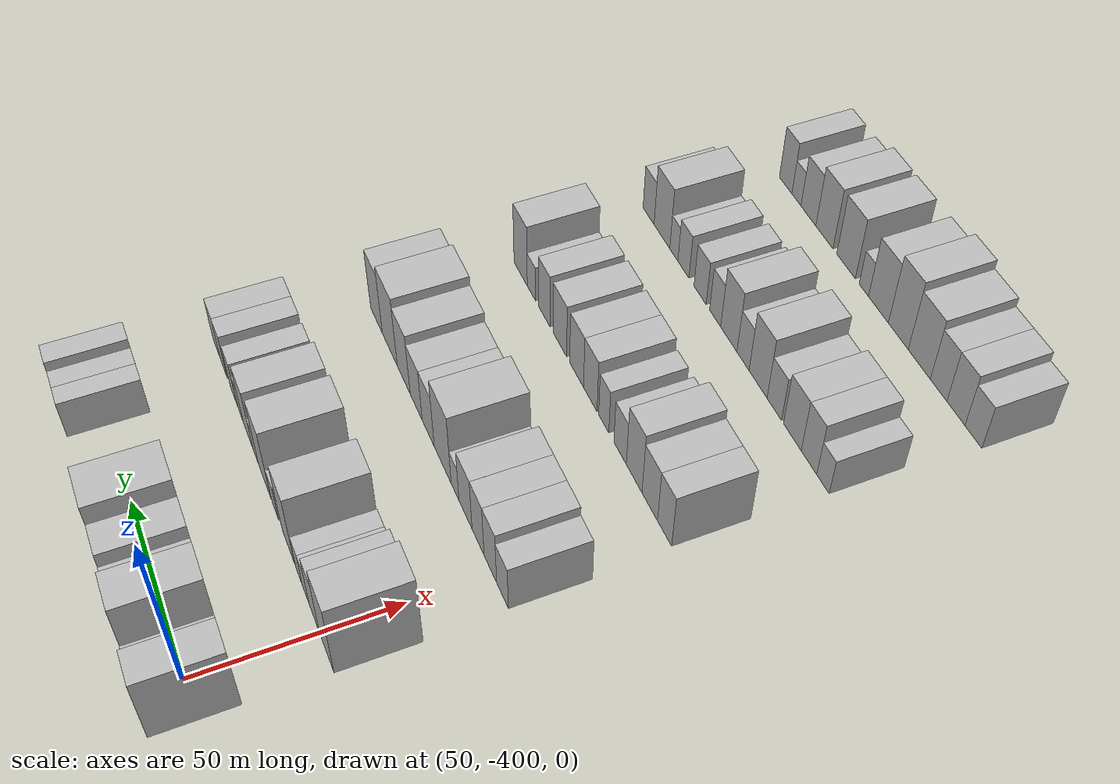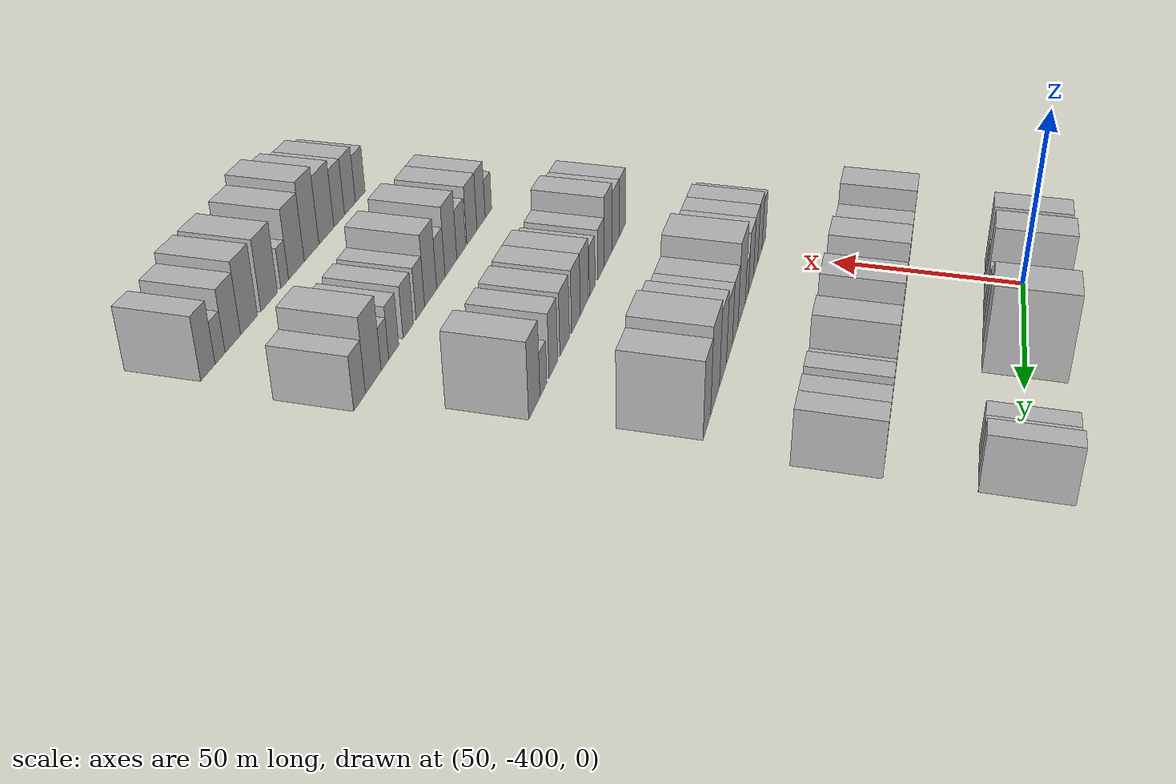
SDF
<sdf version="1.6">
 <world name="default">
  <model name="building_24">
   <static>1</static>
   <pose>50.0000 -406.0609 0 0.000000 0.000000 0.000000</pose>
   <link name="link">
    <pose>0 0 10.50 0 0 0</pose>
    <collision name="collision"><geometry><box><size>20.0000 8.8327 21.0000</size></box></geometry></collision>
    <visual name="visual">
     <cast_shadows>0</cast_shadows>
     <geometry><box><size>20.0000 8.8327 21.0000</size></box></geometry>
     <material>
      <script>
       <uri>model://HANNAS_wall/materials/scripts</uri>
       <uri>model://HANNAS_wall/materials/textures</uri>
       <name>vrc/HANNAS_wall</name>
      </script>
     </material>
    </visual>
   </link>
  </model>
  <model name="building_25">
   <static>1</static>
   <pose>50.0000 -397.7985 0 0.000000 0.000000 0.000000</pose>
   <link name="link">
    <pose>0 0 6.00 0 0 0</pose>
    <collision name="collision"><geometry><box><size>20.0000 5.6922 12.0000</size></box></geometry></collision>
    <visual name="visual">
     <cast_shadows>0</cast_shadows>
     <geometry><box><size>20.0000 5.6922 12.0000</size></box></geometry>
     <material>
      <script>
       <uri>model://HANNAS_wall/materials/scripts</uri>
       <uri>model://HANNAS_wall/materials/textures</uri>
       <name>vrc/HANNAS_wall</name>
      </script>
     </material>
    </visual>
   </link>
  </model>
  <model name="building_26">
   <static>1</static>
   <pose>50.0000 -388.9494 0 0.000000 0.000000 0.000000</pose>
   <link name="link">
    <pose>0 0 12.00 0 0 0</pose>
    <collision name="collision"><geometry><box><size>20.0000 10.0061 24.0000</size></box></geometry></collision>
    <visual name="visual">
     <cast_shadows>0</cast_shadows>
     <geometry><box><size>20.0000 10.0061 24.0000</size></box></geometry>
     <material>
      <script>
       <uri>model://HANNAS_wall/materials/scripts</uri>
       <uri>model://HANNAS_wall/materials/textures</uri>
       <name>vrc/HANNAS_wall</name>
      </script>
     </material>
    </visual>
   </link>
  </model>
  <model name="building_27">
   <static>1</static>
   <pose>50.0000 -379.5831 0 0.000000 0.000000 0.000000</pose>
   <link name="link">
    <pose>0 0 7.50 0 0 0</pose>
    <collision name="collision"><geometry><box><size>20.0000 6.7265 15.0000</size></box></geometry></collision>
    <visual name="visual">
     <cast_shadows>0</cast_shadows>
     <geometry><box><size>20.0000 6.7265 15.0000</size></box></geometry>
     <material>
      <script>
       <uri>model://HANNAS_wall/materials/scripts</uri>
       <uri>model://HANNAS_wall/materials/textures</uri>
       <name>vrc/HANNAS_wall</name>
      </script>
     </material>
    </visual>
   </link>
  </model>
  <model name="building_28">
   <static>1</static>
   <pose>50.0000 -370.9501 0 0.000000 0.000000 0.000000</pose>
   <link name="link">
    <pose>0 0 9.00 0 0 0</pose>
    <collision name="collision"><geometry><box><size>20.0000 8.5394 18.0000</size></box></geometry></collision>
    <visual name="visual">
     <cast_shadows>0</cast_shadows>
     <geometry><box><size>20.0000 8.5394 18.0000</size></box></geometry>
     <material>
      <script>
       <uri>model://HANNAS_wall/materials/scripts</uri>
       <uri>model://HANNAS_wall/materials/textures</uri>
       <name>vrc/HANNAS_wall</name>
      </script>
     </material>
    </visual>
   </link>
  </model>
  <model name="building_29">
   <static>1</static>
   <pose>50.0000 -360.7772 0 0.000000 0.000000 0.000000</pose>
   <link name="link">
    <pose>0 0 12.00 0 0 0</pose>
    <collision name="collision"><geometry><box><size>20.0000 11.8064 24.0000</size></box></geometry></collision>
    <visual name="visual">
     <cast_shadows>0</cast_shadows>
     <geometry><box><size>20.0000 11.8064 24.0000</size></box></geometry>
     <material>
      <script>
       <uri>model://HANNAS_wall/materials/scripts</uri>
       <uri>model://HANNAS_wall/materials/textures</uri>
       <name>vrc/HANNAS_wall</name>
      </script>
     </material>
    </visual>
   </link>
  </model>
  <model name="building_30">
   <static>1</static>
   <pose>50.0000 -322.5711 0 0.000000 0.000000 0.000000</pose>
   <link name="link">
    <pose>0 0 6.00 0 0 0</pose>
    <collision name="collision"><geometry><box><size>20.0000 5.5353 12.0000</size></box></geometry></collision>
    <visual name="visual">
     <cast_shadows>0</cast_shadows>
     <geometry><box><size>20.0000 5.5353 12.0000</size></box></geometry>
     <material>
      <script>
       <uri>model://HANNAS_wall/materials/scripts</uri>
       <uri>model://HANNAS_wall/materials/textures</uri>
       <name>vrc/HANNAS_wall</name>
      </script>
     </material>
    </visual>
   </link>
  </model>
  <model name="building_31">
   <static>1</static>
   <pose>50.0000 -317.0941 0 0.000000 0.000000 0.000000</pose>
   <link name="link">
    <pose>0 0 6.00 0 0 0</pose>
    <collision name="collision"><geometry><box><size>20.0000 5.4187 12.0000</size></box></geometry></collision>
    <visual name="visual">
     <cast_shadows>0</cast_shadows>
     <geometry><box><size>20.0000 5.4187 12.0000</size></box></geometry>
     <material>
      <script>
       <uri>model://HANNAS_wall/materials/scripts</uri>
       <uri>model://HANNAS_wall/materials/textures</uri>
       <name>vrc/HANNAS_wall</name>
      </script>
     </material>
    </visual>
   </link>
  </model>
  <model name="building_32">
   <static>1</static>
   <pose>50.0000 -311.3272 0 0.000000 0.000000 0.000000</pose>
   <link name="link">
    <pose>0 0 7.50 0 0 0</pose>
    <collision name="collision"><geometry><box><size>20.0000 6.1151 15.0000</size></box></geometry></collision>
    <visual name="visual">
     <cast_shadows>0</cast_shadows>
     <geometry><box><size>20.0000 6.1151 15.0000</size></box></geometry>
     <material>
      <script>
       <uri>model://HANNAS_wall/materials/scripts</uri>
       <uri>model://HANNAS_wall/materials/textures</uri>
       <name>vrc/HANNAS_wall</name>
      </script>
     </material>
    </visual>
   </link>
  </model>
  <model name="building_162">
   <static>1</static>
   <pose>90.0000 -405.3271 0 0.000000 0.000000 0.000000</pose>
   <link name="link">
    <pose>0 0 12.00 0 0 0</pose>
    <collision name="collision"><geometry><box><size>20.0000 10.5437 24.0000</size></box></geometry></collision>
    <visual name="visual">
     <cast_shadows>0</cast_shadows>
     <geometry><box><size>20.0000 10.5437 24.0000</size></box></geometry>
     <material>
      <script>
       <uri>model://HANNAS_wall/materials/scripts</uri>
       <uri>model://HANNAS_wall/materials/textures</uri>
       <name>vrc/HANNAS_wall</name>
      </script>
     </material>
    </visual>
   </link>
  </model>
  <model name="building_163">
   <static>1</static>
   <pose>90.0000 -396.2112 0 0.000000 0.000000 0.000000</pose>
   <link name="link">
    <pose>0 0 9.00 0 0 0</pose>
    <collision name="collision"><geometry><box><size>20.0000 7.6881 18.0000</size></box></geometry></collision>
    <visual name="visual">
     <cast_shadows>0</cast_shadows>
     <geometry><box><size>20.0000 7.6881 18.0000</size></box></geometry>
     <material>
      <script>
       <uri>model://HANNAS_wall/materials/scripts</uri>
       <uri>model://HANNAS_wall/materials/textures</uri>
       <name>vrc/HANNAS_wall</name>
      </script>
     </material>
    </visual>
   </link>
  </model>
  <model name="building_164">
   <static>1</static>
   <pose>90.0000 -389.7677 0 0.000000 0.000000 0.000000</pose>
   <link name="link">
    <pose>0 0 6.00 0 0 0</pose>
    <collision name="collision"><geometry><box><size>20.0000 5.1988 12.0000</size></box></geometry></collision>
    <visual name="visual">
     <cast_shadows>0</cast_shadows>
     <geometry><box><size>20.0000 5.1988 12.0000</size></box></geometry>
     <material>
      <script>
       <uri>model://HANNAS_wall/materials/scripts</uri>
       <uri>model://HANNAS_wall/materials/textures</uri>
       <name>vrc/HANNAS_wall</name>
      </script>
     </material>
    </visual>
   </link>
  </model>
  <model name="building_165">
   <static>1</static>
   <pose>90.0000 -384.6073 0 0.000000 0.000000 0.000000</pose>
   <link name="link">
    <pose>0 0 6.00 0 0 0</pose>
    <collision name="collision"><geometry><box><size>20.0000 5.1220 12.0000</size></box></geometry></collision>
    <visual name="visual">
     <cast_shadows>0</cast_shadows>
     <geometry><box><size>20.0000 5.1220 12.0000</size></box></geometry>
     <material>
      <script>
       <uri>model://HANNAS_wall/materials/scripts</uri>
       <uri>model://HANNAS_wall/materials/textures</uri>
       <name>vrc/HANNAS_wall</name>
      </script>
     </material>
    </visual>
   </link>
  </model>
  <model name="building_166">
   <static>1</static>
   <pose>90.0000 -375.9697 0 0.000000 0.000000 0.000000</pose>
   <link name="link">
    <pose>0 0 12.00 0 0 0</pose>
    <collision name="collision"><geometry><box><size>20.0000 10.1532 24.0000</size></box></geometry></collision>
    <visual name="visual">
     <cast_shadows>0</cast_shadows>
     <geometry><box><size>20.0000 10.1532 24.0000</size></box></geometry>
     <material>
      <script>
       <uri>model://HANNAS_wall/materials/scripts</uri>
       <uri>model://HANNAS_wall/materials/textures</uri>
       <name>vrc/HANNAS_wall</name>
      </script>
     </material>
    </visual>
   </link>
  </model>
  <model name="building_167">
   <static>1</static>
   <pose>90.0000 -365.1997 0 0.000000 0.000000 0.000000</pose>
   <link name="link">
    <pose>0 0 6.00 0 0 0</pose>
    <collision name="collision"><geometry><box><size>20.0000 5.3869 12.0000</size></box></geometry></collision>
    <visual name="visual">
     <cast_shadows>0</cast_shadows>
     <geometry><box><size>20.0000 5.3869 12.0000</size></box></geometry>
     <material>
      <script>
       <uri>model://HANNAS_wall/materials/scripts</uri>
       <uri>model://HANNAS_wall/materials/textures</uri>
       <name>vrc/HANNAS_wall</name>
      </script>
     </material>
    </visual>
   </link>
  </model>
  <model name="building_168">
   <static>1</static>
   <pose>90.0000 -356.3418 0 0.000000 0.000000 0.000000</pose>
   <link name="link">
    <pose>0 0 12.00 0 0 0</pose>
    <collision name="collision"><geometry><box><size>20.0000 10.3289 24.0000</size></box></geometry></collision>
    <visual name="visual">
     <cast_shadows>0</cast_shadows>
     <geometry><box><size>20.0000 10.3289 24.0000</size></box></geometry>
     <material>
      <script>
       <uri>model://HANNAS_wall/materials/scripts</uri>
       <uri>model://HANNAS_wall/materials/textures</uri>
       <name>vrc/HANNAS_wall</name>
      </script>
     </material>
    </visual>
   </link>
  </model>
  <model name="building_169">
   <static>1</static>
   <pose>90.0000 -348.7534 0 0.000000 0.000000 0.000000</pose>
   <link name="link">
    <pose>0 0 6.00 0 0 0</pose>
    <collision name="collision"><geometry><box><size>20.0000 4.8478 12.0000</size></box></geometry></collision>
    <visual name="visual">
     <cast_shadows>0</cast_shadows>
     <geometry><box><size>20.0000 4.8478 12.0000</size></box></geometry>
     <material>
      <script>
       <uri>model://HANNAS_wall/materials/scripts</uri>
       <uri>model://HANNAS_wall/materials/textures</uri>
       <name>vrc/HANNAS_wall</name>
      </script>
     </material>
    </visual>
   </link>
  </model>
  <model name="building_170">
   <static>1</static>
   <pose>90.0000 -341.8837 0 0.000000 0.000000 0.000000</pose>
   <link name="link">
    <pose>0 0 10.50 0 0 0</pose>
    <collision name="collision"><geometry><box><size>20.0000 8.8917 21.0000</size></box></geometry></collision>
    <visual name="visual">
     <cast_shadows>0</cast_shadows>
     <geometry><box><size>20.0000 8.8917 21.0000</size></box></geometry>
     <material>
      <script>
       <uri>model://HANNAS_wall/materials/scripts</uri>
       <uri>model://HANNAS_wall/materials/textures</uri>
       <name>vrc/HANNAS_wall</name>
      </script>
     </material>
    </visual>
   </link>
  </model>
  <model name="building_171">
   <static>1</static>
   <pose>90.0000 -334.9029 0 0.000000 0.000000 0.000000</pose>
   <link name="link">
    <pose>0 0 6.00 0 0 0</pose>
    <collision name="collision"><geometry><box><size>20.0000 5.0699 12.0000</size></box></geometry></collision>
    <visual name="visual">
     <cast_shadows>0</cast_shadows>
     <geometry><box><size>20.0000 5.0699 12.0000</size></box></geometry>
     <material>
      <script>
       <uri>model://HANNAS_wall/materials/scripts</uri>
       <uri>model://HANNAS_wall/materials/textures</uri>
       <name>vrc/HANNAS_wall</name>
      </script>
     </material>
    </visual>
   </link>
  </model>
  <model name="building_172">
   <static>1</static>
   <pose>90.0000 -328.1903 0 0.000000 0.000000 0.000000</pose>
   <link name="link">
    <pose>0 0 7.50 0 0 0</pose>
    <collision name="collision"><geometry><box><size>20.0000 6.3552 15.0000</size></box></geometry></collision>
    <visual name="visual">
     <cast_shadows>0</cast_shadows>
     <geometry><box><size>20.0000 6.3552 15.0000</size></box></geometry>
     <material>
      <script>
       <uri>model://HANNAS_wall/materials/scripts</uri>
       <uri>model://HANNAS_wall/materials/textures</uri>
       <name>vrc/HANNAS_wall</name>
      </script>
     </material>
    </visual>
   </link>
  </model>
  <model name="building_173">
   <static>1</static>
   <pose>90.0000 -318.7175 0 0.000000 0.000000 0.000000</pose>
   <link name="link">
    <pose>0 0 7.50 0 0 0</pose>
    <collision name="collision"><geometry><box><size>20.0000 6.5905 15.0000</size></box></geometry></collision>
    <visual name="visual">
     <cast_shadows>0</cast_shadows>
     <geometry><box><size>20.0000 6.5905 15.0000</size></box></geometry>
     <material>
      <script>
       <uri>model://HANNAS_wall/materials/scripts</uri>
       <uri>model://HANNAS_wall/materials/textures</uri>
       <name>vrc/HANNAS_wall</name>
      </script>
     </material>
    </visual>
   </link>
  </model>
  <model name="building_174">
   <static>1</static>
   <pose>90.0000 -311.8172 0 0.000000 0.000000 0.000000</pose>
   <link name="link">
    <pose>0 0 7.50 0 0 0</pose>
    <collision name="collision"><geometry><box><size>20.0000 7.2100 15.0000</size></box></geometry></collision>
    <visual name="visual">
     <cast_shadows>0</cast_shadows>
     <geometry><box><size>20.0000 7.2100 15.0000</size></box></geometry>
     <material>
      <script>
       <uri>model://HANNAS_wall/materials/scripts</uri>
       <uri>model://HANNAS_wall/materials/textures</uri>
       <name>vrc/HANNAS_wall</name>
      </script>
     </material>
    </visual>
   </link>
  </model>
  <model name="building_303">
   <static>1</static>
   <pose>130.0000 -406.2074 0 0.000000 0.000000 0.000000</pose>
   <link name="link">
    <pose>0 0 7.50 0 0 0</pose>
    <collision name="collision"><geometry><box><size>20.0000 7.1765 15.0000</size></box></geometry></collision>
    <visual name="visual">
     <cast_shadows>0</cast_shadows>
     <geometry><box><size>20.0000 7.1765 15.0000</size></box></geometry>
     <material>
      <script>
       <uri>model://HANNAS_wall/materials/scripts</uri>
       <uri>model://HANNAS_wall/materials/textures</uri>
       <name>vrc/HANNAS_wall</name>
      </script>
     </material>
    </visual>
   </link>
  </model>
  <model name="building_304">
   <static>1</static>
   <pose>130.0000 -398.6900 0 0.000000 0.000000 0.000000</pose>
   <link name="link">
    <pose>0 0 9.00 0 0 0</pose>
    <collision name="collision"><geometry><box><size>20.0000 7.8584 18.0000</size></box></geometry></collision>
    <visual name="visual">
     <cast_shadows>0</cast_shadows>
     <geometry><box><size>20.0000 7.8584 18.0000</size></box></geometry>
     <material>
      <script>
       <uri>model://HANNAS_wall/materials/scripts</uri>
       <uri>model://HANNAS_wall/materials/textures</uri>
       <name>vrc/HANNAS_wall</name>
      </script>
     </material>
    </visual>
   </link>
  </model>
  <model name="building_305">
   <static>1</static>
   <pose>130.0000 -390.9054 0 0.000000 0.000000 0.000000</pose>
   <link name="link">
    <pose>0 0 9.00 0 0 0</pose>
    <collision name="collision"><geometry><box><size>20.0000 7.7109 18.0000</size></box></geometry></collision>
    <visual name="visual">
     <cast_shadows>0</cast_shadows>
     <geometry><box><size>20.0000 7.7109 18.0000</size></box></geometry>
     <material>
      <script>
       <uri>model://HANNAS_wall/materials/scripts</uri>
       <uri>model://HANNAS_wall/materials/textures</uri>
       <name>vrc/HANNAS_wall</name>
      </script>
     </material>
    </visual>
   </link>
  </model>
  <model name="building_306">
   <static>1</static>
   <pose>130.0000 -382.7340 0 0.000000 0.000000 0.000000</pose>
   <link name="link">
    <pose>0 0 9.00 0 0 0</pose>
    <collision name="collision"><geometry><box><size>20.0000 8.6318 18.0000</size></box></geometry></collision>
    <visual name="visual">
     <cast_shadows>0</cast_shadows>
     <geometry><box><size>20.0000 8.6318 18.0000</size></box></geometry>
     <material>
      <script>
       <uri>model://HANNAS_wall/materials/scripts</uri>
       <uri>model://HANNAS_wall/materials/textures</uri>
       <name>vrc/HANNAS_wall</name>
      </script>
     </material>
    </visual>
   </link>
  </model>
  <model name="building_307">
   <static>1</static>
   <pose>130.0000 -375.7832 0 0.000000 0.000000 0.000000</pose>
   <link name="link">
    <pose>0 0 6.00 0 0 0</pose>
    <collision name="collision"><geometry><box><size>20.0000 5.2697 12.0000</size></box></geometry></collision>
    <visual name="visual">
     <cast_shadows>0</cast_shadows>
     <geometry><box><size>20.0000 5.2697 12.0000</size></box></geometry>
     <material>
      <script>
       <uri>model://HANNAS_wall/materials/scripts</uri>
       <uri>model://HANNAS_wall/materials/textures</uri>
       <name>vrc/HANNAS_wall</name>
      </script>
     </material>
    </visual>
   </link>
  </model>
  <model name="building_308">
   <static>1</static>
   <pose>130.0000 -367.2516 0 0.000000 0.000000 0.000000</pose>
   <link name="link">
    <pose>0 0 12.00 0 0 0</pose>
    <collision name="collision"><geometry><box><size>20.0000 11.7936 24.0000</size></box></geometry></collision>
    <visual name="visual">
     <cast_shadows>0</cast_shadows>
     <geometry><box><size>20.0000 11.7936 24.0000</size></box></geometry>
     <material>
      <script>
       <uri>model://HANNAS_wall/materials/scripts</uri>
       <uri>model://HANNAS_wall/materials/textures</uri>
       <name>vrc/HANNAS_wall</name>
      </script>
     </material>
    </visual>
   </link>
  </model>
  <model name="building_309">
   <static>1</static>
   <pose>130.0000 -357.0584 0 0.000000 0.000000 0.000000</pose>
   <link name="link">
    <pose>0 0 9.00 0 0 0</pose>
    <collision name="collision"><geometry><box><size>20.0000 8.5927 18.0000</size></box></geometry></collision>
    <visual name="visual">
     <cast_shadows>0</cast_shadows>
     <geometry><box><size>20.0000 8.5927 18.0000</size></box></geometry>
     <material>
      <script>
       <uri>model://HANNAS_wall/materials/scripts</uri>
       <uri>model://HANNAS_wall/materials/textures</uri>
       <name>vrc/HANNAS_wall</name>
      </script>
     </material>
    </visual>
   </link>
  </model>
  <model name="building_310">
   <static>1</static>
   <pose>130.0000 -348.3372 0 0.000000 0.000000 0.000000</pose>
   <link name="link">
    <pose>0 0 9.00 0 0 0</pose>
    <collision name="collision"><geometry><box><size>20.0000 8.8498 18.0000</size></box></geometry></collision>
    <visual name="visual">
     <cast_shadows>0</cast_shadows>
     <geometry><box><size>20.0000 8.8498 18.0000</size></box></geometry>
     <material>
      <script>
       <uri>model://HANNAS_wall/materials/scripts</uri>
       <uri>model://HANNAS_wall/materials/textures</uri>
       <name>vrc/HANNAS_wall</name>
      </script>
     </material>
    </visual>
   </link>
  </model>
  <model name="building_311">
   <static>1</static>
   <pose>130.0000 -339.0054 0 0.000000 0.000000 0.000000</pose>
   <link name="link">
    <pose>0 0 10.50 0 0 0</pose>
    <collision name="collision"><geometry><box><size>20.0000 9.8137 21.0000</size></box></geometry></collision>
    <visual name="visual">
     <cast_shadows>0</cast_shadows>
     <geometry><box><size>20.0000 9.8137 21.0000</size></box></geometry>
     <material>
      <script>
       <uri>model://HANNAS_wall/materials/scripts</uri>
       <uri>model://HANNAS_wall/materials/textures</uri>
       <name>vrc/HANNAS_wall</name>
      </script>
     </material>
    </visual>
   </link>
  </model>
  <model name="building_312">
   <static>1</static>
   <pose>130.0000 -328.2256 0 0.000000 0.000000 0.000000</pose>
   <link name="link">
    <pose>0 0 12.00 0 0 0</pose>
    <collision name="collision"><geometry><box><size>20.0000 11.7460 24.0000</size></box></geometry></collision>
    <visual name="visual">
     <cast_shadows>0</cast_shadows>
     <geometry><box><size>20.0000 11.7460 24.0000</size></box></geometry>
     <material>
      <script>
       <uri>model://HANNAS_wall/materials/scripts</uri>
       <uri>model://HANNAS_wall/materials/textures</uri>
       <name>vrc/HANNAS_wall</name>
      </script>
     </material>
    </visual>
   </link>
  </model>
  <model name="building_313">
   <static>1</static>
   <pose>130.0000 -317.6097 0 0.000000 0.000000 0.000000</pose>
   <link name="link">
    <pose>0 0 10.50 0 0 0</pose>
    <collision name="collision"><geometry><box><size>20.0000 9.4857 21.0000</size></box></geometry></collision>
    <visual name="visual">
     <cast_shadows>0</cast_shadows>
     <geometry><box><size>20.0000 9.4857 21.0000</size></box></geometry>
     <material>
      <script>
       <uri>model://HANNAS_wall/materials/scripts</uri>
       <uri>model://HANNAS_wall/materials/textures</uri>
       <name>vrc/HANNAS_wall</name>
      </script>
     </material>
    </visual>
   </link>
  </model>
  <model name="building_438">
   <static>1</static>
   <pose>170.0000 -404.6537 0 0.000000 0.000000 0.000000</pose>
   <link name="link">
    <pose>0 0 9.00 0 0 0</pose>
    <collision name="collision"><geometry><box><size>20.0000 7.5711 18.0000</size></box></geometry></collision>
    <visual name="visual">
     <cast_shadows>0</cast_shadows>
     <geometry><box><size>20.0000 7.5711 18.0000</size></box></geometry>
     <material>
      <script>
       <uri>model://HANNAS_wall/materials/scripts</uri>
       <uri>model://HANNAS_wall/materials/textures</uri>
       <name>vrc/HANNAS_wall</name>
      </script>
     </material>
    </visual>
   </link>
  </model>
  <model name="building_439">
   <static>1</static>
   <pose>170.0000 -396.6211 0 0.000000 0.000000 0.000000</pose>
   <link name="link">
    <pose>0 0 9.00 0 0 0</pose>
    <collision name="collision"><geometry><box><size>20.0000 8.4942 18.0000</size></box></geometry></collision>
    <visual name="visual">
     <cast_shadows>0</cast_shadows>
     <geometry><box><size>20.0000 8.4942 18.0000</size></box></geometry>
     <material>
      <script>
       <uri>model://HANNAS_wall/materials/scripts</uri>
       <uri>model://HANNAS_wall/materials/textures</uri>
       <name>vrc/HANNAS_wall</name>
      </script>
     </material>
    </visual>
   </link>
  </model>
  <model name="building_440">
   <static>1</static>
   <pose>170.0000 -387.9062 0 0.000000 0.000000 0.000000</pose>
   <link name="link">
    <pose>0 0 10.50 0 0 0</pose>
    <collision name="collision"><geometry><box><size>20.0000 8.9356 21.0000</size></box></geometry></collision>
    <visual name="visual">
     <cast_shadows>0</cast_shadows>
     <geometry><box><size>20.0000 8.9356 21.0000</size></box></geometry>
     <material>
      <script>
       <uri>model://HANNAS_wall/materials/scripts</uri>
       <uri>model://HANNAS_wall/materials/textures</uri>
       <name>vrc/HANNAS_wall</name>
      </script>
     </material>
    </visual>
   </link>
  </model>
  <model name="building_441">
   <static>1</static>
   <pose>170.0000 -379.8383 0 0.000000 0.000000 0.000000</pose>
   <link name="link">
    <pose>0 0 7.50 0 0 0</pose>
    <collision name="collision"><geometry><box><size>20.0000 7.2002 15.0000</size></box></geometry></collision>
    <visual name="visual">
     <cast_shadows>0</cast_shadows>
     <geometry><box><size>20.0000 7.2002 15.0000</size></box></geometry>
     <material>
      <script>
       <uri>model://HANNAS_wall/materials/scripts</uri>
       <uri>model://HANNAS_wall/materials/textures</uri>
       <name>vrc/HANNAS_wall</name>
      </script>
     </material>
    </visual>
   </link>
  </model>
  <model name="building_442">
   <static>1</static>
   <pose>170.0000 -370.2120 0 0.000000 0.000000 0.000000</pose>
   <link name="link">
    <pose>0 0 7.50 0 0 0</pose>
    <collision name="collision"><geometry><box><size>20.0000 6.0524 15.0000</size></box></geometry></collision>
    <visual name="visual">
     <cast_shadows>0</cast_shadows>
     <geometry><box><size>20.0000 6.0524 15.0000</size></box></geometry>
     <material>
      <script>
       <uri>model://HANNAS_wall/materials/scripts</uri>
       <uri>model://HANNAS_wall/materials/textures</uri>
       <name>vrc/HANNAS_wall</name>
      </script>
     </material>
    </visual>
   </link>
  </model>
  <model name="building_443">
   <static>1</static>
   <pose>170.0000 -362.0256 0 0.000000 0.000000 0.000000</pose>
   <link name="link">
    <pose>0 0 9.00 0 0 0</pose>
    <collision name="collision"><geometry><box><size>20.0000 8.3205 18.0000</size></box></geometry></collision>
    <visual name="visual">
     <cast_shadows>0</cast_shadows>
     <geometry><box><size>20.0000 8.3205 18.0000</size></box></geometry>
     <material>
      <script>
       <uri>model://HANNAS_wall/materials/scripts</uri>
       <uri>model://HANNAS_wall/materials/textures</uri>
       <name>vrc/HANNAS_wall</name>
      </script>
     </material>
    </visual>
   </link>
  </model>
  <model name="building_444">
   <static>1</static>
   <pose>170.0000 -353.4973 0 0.000000 0.000000 0.000000</pose>
   <link name="link">
    <pose>0 0 9.00 0 0 0</pose>
    <collision name="collision"><geometry><box><size>20.0000 8.7361 18.0000</size></box></geometry></collision>
    <visual name="visual">
     <cast_shadows>0</cast_shadows>
     <geometry><box><size>20.0000 8.7361 18.0000</size></box></geometry>
     <material>
      <script>
       <uri>model://HANNAS_wall/materials/scripts</uri>
       <uri>model://HANNAS_wall/materials/textures</uri>
       <name>vrc/HANNAS_wall</name>
      </script>
     </material>
    </visual>
   </link>
  </model>
  <model name="building_445">
   <static>1</static>
   <pose>170.0000 -342.6741 0 0.000000 0.000000 0.000000</pose>
   <link name="link">
    <pose>0 0 9.00 0 0 0</pose>
    <collision name="collision"><geometry><box><size>20.0000 8.9103 18.0000</size></box></geometry></collision>
    <visual name="visual">
     <cast_shadows>0</cast_shadows>
     <geometry><box><size>20.0000 8.9103 18.0000</size></box></geometry>
     <material>
      <script>
       <uri>model://HANNAS_wall/materials/scripts</uri>
       <uri>model://HANNAS_wall/materials/textures</uri>
       <name>vrc/HANNAS_wall</name>
      </script>
     </material>
    </visual>
   </link>
  </model>
  <model name="building_446">
   <static>1</static>
   <pose>170.0000 -332.3662 0 0.000000 0.000000 0.000000</pose>
   <link name="link">
    <pose>0 0 9.00 0 0 0</pose>
    <collision name="collision"><geometry><box><size>20.0000 7.7056 18.0000</size></box></geometry></collision>
    <visual name="visual">
     <cast_shadows>0</cast_shadows>
     <geometry><box><size>20.0000 7.7056 18.0000</size></box></geometry>
     <material>
      <script>
       <uri>model://HANNAS_wall/materials/scripts</uri>
       <uri>model://HANNAS_wall/materials/textures</uri>
       <name>vrc/HANNAS_wall</name>
      </script>
     </material>
    </visual>
   </link>
  </model>
  <model name="building_447">
   <static>1</static>
   <pose>170.0000 -323.6125 0 0.000000 0.000000 0.000000</pose>
   <link name="link">
    <pose>0 0 6.00 0 0 0</pose>
    <collision name="collision"><geometry><box><size>20.0000 5.8017 12.0000</size></box></geometry></collision>
    <visual name="visual">
     <cast_shadows>0</cast_shadows>
     <geometry><box><size>20.0000 5.8017 12.0000</size></box></geometry>
     <material>
      <script>
       <uri>model://HANNAS_wall/materials/scripts</uri>
       <uri>model://HANNAS_wall/materials/textures</uri>
       <name>vrc/HANNAS_wall</name>
      </script>
     </material>
    </visual>
   </link>
  </model>
  <model name="building_448">
   <static>1</static>
   <pose>170.0000 -316.0475 0 0.000000 0.000000 0.000000</pose>
   <link name="link">
    <pose>0 0 10.50 0 0 0</pose>
    <collision name="collision"><geometry><box><size>20.0000 9.3282 21.0000</size></box></geometry></collision>
    <visual name="visual">
     <cast_shadows>0</cast_shadows>
     <geometry><box><size>20.0000 9.3282 21.0000</size></box></geometry>
     <material>
      <script>
       <uri>model://HANNAS_wall/materials/scripts</uri>
       <uri>model://HANNAS_wall/materials/textures</uri>
       <name>vrc/HANNAS_wall</name>
      </script>
     </material>
    </visual>
   </link>
  </model>
  <model name="building_569">
   <static>1</static>
   <pose>210.0000 -406.0434 0 0.000000 0.000000 0.000000</pose>
   <link name="link">
    <pose>0 0 6.00 0 0 0</pose>
    <collision name="collision"><geometry><box><size>20.0000 5.9802 12.0000</size></box></geometry></collision>
    <visual name="visual">
     <cast_shadows>0</cast_shadows>
     <geometry><box><size>20.0000 5.9802 12.0000</size></box></geometry>
     <material>
      <script>
       <uri>model://HANNAS_wall/materials/scripts</uri>
       <uri>model://HANNAS_wall/materials/textures</uri>
       <name>vrc/HANNAS_wall</name>
      </script>
     </material>
    </visual>
   </link>
  </model>
  <model name="building_570">
   <static>1</static>
   <pose>210.0000 -399.2539 0 0.000000 0.000000 0.000000</pose>
   <link name="link">
    <pose>0 0 9.00 0 0 0</pose>
    <collision name="collision"><geometry><box><size>20.0000 7.5987 18.0000</size></box></geometry></collision>
    <visual name="visual">
     <cast_shadows>0</cast_shadows>
     <geometry><box><size>20.0000 7.5987 18.0000</size></box></geometry>
     <material>
      <script>
       <uri>model://HANNAS_wall/materials/scripts</uri>
       <uri>model://HANNAS_wall/materials/textures</uri>
       <name>vrc/HANNAS_wall</name>
      </script>
     </material>
    </visual>
   </link>
  </model>
  <model name="building_571">
   <static>1</static>
   <pose>210.0000 -390.9783 0 0.000000 0.000000 0.000000</pose>
   <link name="link">
    <pose>0 0 9.00 0 0 0</pose>
    <collision name="collision"><geometry><box><size>20.0000 8.9526 18.0000</size></box></geometry></collision>
    <visual name="visual">
     <cast_shadows>0</cast_shadows>
     <geometry><box><size>20.0000 8.9526 18.0000</size></box></geometry>
     <material>
      <script>
       <uri>model://HANNAS_wall/materials/scripts</uri>
       <uri>model://HANNAS_wall/materials/textures</uri>
       <name>vrc/HANNAS_wall</name>
      </script>
     </material>
    </visual>
   </link>
  </model>
  <model name="building_572">
   <static>1</static>
   <pose>210.0000 -381.7569 0 0.000000 0.000000 0.000000</pose>
   <link name="link">
    <pose>0 0 7.50 0 0 0</pose>
    <collision name="collision"><geometry><box><size>20.0000 7.4902 15.0000</size></box></geometry></collision>
    <visual name="visual">
     <cast_shadows>0</cast_shadows>
     <geometry><box><size>20.0000 7.4902 15.0000</size></box></geometry>
     <material>
      <script>
       <uri>model://HANNAS_wall/materials/scripts</uri>
       <uri>model://HANNAS_wall/materials/textures</uri>
       <name>vrc/HANNAS_wall</name>
      </script>
     </material>
    </visual>
   </link>
  </model>
  <model name="building_573">
   <static>1</static>
   <pose>210.0000 -373.1978 0 0.000000 0.000000 0.000000</pose>
   <link name="link">
    <pose>0 0 10.50 0 0 0</pose>
    <collision name="collision"><geometry><box><size>20.0000 9.6279 21.0000</size></box></geometry></collision>
    <visual name="visual">
     <cast_shadows>0</cast_shadows>
     <geometry><box><size>20.0000 9.6279 21.0000</size></box></geometry>
     <material>
      <script>
       <uri>model://HANNAS_wall/materials/scripts</uri>
       <uri>model://HANNAS_wall/materials/textures</uri>
       <name>vrc/HANNAS_wall</name>
      </script>
     </material>
    </visual>
   </link>
  </model>
  <model name="building_574">
   <static>1</static>
   <pose>210.0000 -365.0629 0 0.000000 0.000000 0.000000</pose>
   <link name="link">
    <pose>0 0 7.50 0 0 0</pose>
    <collision name="collision"><geometry><box><size>20.0000 6.6420 15.0000</size></box></geometry></collision>
    <visual name="visual">
     <cast_shadows>0</cast_shadows>
     <geometry><box><size>20.0000 6.6420 15.0000</size></box></geometry>
     <material>
      <script>
       <uri>model://HANNAS_wall/materials/scripts</uri>
       <uri>model://HANNAS_wall/materials/textures</uri>
       <name>vrc/HANNAS_wall</name>
      </script>
     </material>
    </visual>
   </link>
  </model>
  <model name="building_575">
   <static>1</static>
   <pose>210.0000 -357.1786 0 0.000000 0.000000 0.000000</pose>
   <link name="link">
    <pose>0 0 10.50 0 0 0</pose>
    <collision name="collision"><geometry><box><size>20.0000 9.1264 21.0000</size></box></geometry></collision>
    <visual name="visual">
     <cast_shadows>0</cast_shadows>
     <geometry><box><size>20.0000 9.1264 21.0000</size></box></geometry>
     <material>
      <script>
       <uri>model://HANNAS_wall/materials/scripts</uri>
       <uri>model://HANNAS_wall/materials/textures</uri>
       <name>vrc/HANNAS_wall</name>
      </script>
     </material>
    </visual>
   </link>
  </model>
  <model name="building_576">
   <static>1</static>
   <pose>210.0000 -349.4319 0 0.000000 0.000000 0.000000</pose>
   <link name="link">
    <pose>0 0 7.50 0 0 0</pose>
    <collision name="collision"><geometry><box><size>20.0000 6.3670 15.0000</size></box></geometry></collision>
    <visual name="visual">
     <cast_shadows>0</cast_shadows>
     <geometry><box><size>20.0000 6.3670 15.0000</size></box></geometry>
     <material>
      <script>
       <uri>model://HANNAS_wall/materials/scripts</uri>
       <uri>model://HANNAS_wall/materials/textures</uri>
       <name>vrc/HANNAS_wall</name>
      </script>
     </material>
    </visual>
   </link>
  </model>
  <model name="building_577">
   <static>1</static>
   <pose>210.0000 -340.6617 0 0.000000 0.000000 0.000000</pose>
   <link name="link">
    <pose>0 0 7.50 0 0 0</pose>
    <collision name="collision"><geometry><box><size>20.0000 7.1734 15.0000</size></box></geometry></collision>
    <visual name="visual">
     <cast_shadows>0</cast_shadows>
     <geometry><box><size>20.0000 7.1734 15.0000</size></box></geometry>
     <material>
      <script>
       <uri>model://HANNAS_wall/materials/scripts</uri>
       <uri>model://HANNAS_wall/materials/textures</uri>
       <name>vrc/HANNAS_wall</name>
      </script>
     </material>
    </visual>
   </link>
  </model>
  <model name="building_578">
   <static>1</static>
   <pose>210.0000 -330.7250 0 0.000000 0.000000 0.000000</pose>
   <link name="link">
    <pose>0 0 7.50 0 0 0</pose>
    <collision name="collision"><geometry><box><size>20.0000 6.7000 15.0000</size></box></geometry></collision>
    <visual name="visual">
     <cast_shadows>0</cast_shadows>
     <geometry><box><size>20.0000 6.7000 15.0000</size></box></geometry>
     <material>
      <script>
       <uri>model://HANNAS_wall/materials/scripts</uri>
       <uri>model://HANNAS_wall/materials/textures</uri>
       <name>vrc/HANNAS_wall</name>
      </script>
     </material>
    </visual>
   </link>
  </model>
  <model name="building_579">
   <static>1</static>
   <pose>210.0000 -324.8790 0 0.000000 0.000000 0.000000</pose>
   <link name="link">
    <pose>0 0 6.00 0 0 0</pose>
    <collision name="collision"><geometry><box><size>20.0000 4.9920 12.0000</size></box></geometry></collision>
    <visual name="visual">
     <cast_shadows>0</cast_shadows>
     <geometry><box><size>20.0000 4.9920 12.0000</size></box></geometry>
     <material>
      <script>
       <uri>model://HANNAS_wall/materials/scripts</uri>
       <uri>model://HANNAS_wall/materials/textures</uri>
       <name>vrc/HANNAS_wall</name>
      </script>
     </material>
    </visual>
   </link>
  </model>
  <model name="building_580">
   <static>1</static>
   <pose>210.0000 -317.4263 0 0.000000 0.000000 0.000000</pose>
   <link name="link">
    <pose>0 0 10.50 0 0 0</pose>
    <collision name="collision"><geometry><box><size>20.0000 9.9133 21.0000</size></box></geometry></collision>
    <visual name="visual">
     <cast_shadows>0</cast_shadows>
     <geometry><box><size>20.0000 9.9133 21.0000</size></box></geometry>
     <material>
      <script>
       <uri>model://HANNAS_wall/materials/scripts</uri>
       <uri>model://HANNAS_wall/materials/textures</uri>
       <name>vrc/HANNAS_wall</name>
      </script>
     </material>
    </visual>
   </link>
  </model>
  <model name="building_581">
   <static>1</static>
   <pose>210.0000 -308.9225 0 0.000000 0.000000 0.000000</pose>
   <link name="link">
    <pose>0 0 7.50 0 0 0</pose>
    <collision name="collision"><geometry><box><size>20.0000 7.0943 15.0000</size></box></geometry></collision>
    <visual name="visual">
     <cast_shadows>0</cast_shadows>
     <geometry><box><size>20.0000 7.0943 15.0000</size></box></geometry>
     <material>
      <script>
       <uri>model://HANNAS_wall/materials/scripts</uri>
       <uri>model://HANNAS_wall/materials/textures</uri>
       <name>vrc/HANNAS_wall</name>
      </script>
     </material>
    </visual>
   </link>
  </model>
  <model name="building_711">
   <static>1</static>
   <pose>250.0000 -407.3155 0 0.000000 0.000000 0.000000</pose>
   <link name="link">
    <pose>0 0 7.50 0 0 0</pose>
    <collision name="collision"><geometry><box><size>20.0000 7.4193 15.0000</size></box></geometry></collision>
    <visual name="visual">
     <cast_shadows>0</cast_shadows>
     <geometry><box><size>20.0000 7.4193 15.0000</size></box></geometry>
     <material>
      <script>
       <uri>model://HANNAS_wall/materials/scripts</uri>
       <uri>model://HANNAS_wall/materials/textures</uri>
       <name>vrc/HANNAS_wall</name>
      </script>
     </material>
    </visual>
   </link>
  </model>
  <model name="building_712">
   <static>1</static>
   <pose>250.0000 -399.5223 0 0.000000 0.000000 0.000000</pose>
   <link name="link">
    <pose>0 0 9.00 0 0 0</pose>
    <collision name="collision"><geometry><box><size>20.0000 8.1672 18.0000</size></box></geometry></collision>
    <visual name="visual">
     <cast_shadows>0</cast_shadows>
     <geometry><box><size>20.0000 8.1672 18.0000</size></box></geometry>
     <material>
      <script>
       <uri>model://HANNAS_wall/materials/scripts</uri>
       <uri>model://HANNAS_wall/materials/textures</uri>
       <name>vrc/HANNAS_wall</name>
      </script>
     </material>
    </visual>
   </link>
  </model>
  <model name="building_713">
   <static>1</static>
   <pose>250.0000 -391.6199 0 0.000000 0.000000 0.000000</pose>
   <link name="link">
    <pose>0 0 9.00 0 0 0</pose>
    <collision name="collision"><geometry><box><size>20.0000 7.6376 18.0000</size></box></geometry></collision>
    <visual name="visual">
     <cast_shadows>0</cast_shadows>
     <geometry><box><size>20.0000 7.6376 18.0000</size></box></geometry>
     <material>
      <script>
       <uri>model://HANNAS_wall/materials/scripts</uri>
       <uri>model://HANNAS_wall/materials/textures</uri>
       <name>vrc/HANNAS_wall</name>
      </script>
     </material>
    </visual>
   </link>
  </model>
  <model name="building_714">
   <static>1</static>
   <pose>250.0000 -382.5587 0 0.000000 0.000000 0.000000</pose>
   <link name="link">
    <pose>0 0 10.50 0 0 0</pose>
    <collision name="collision"><geometry><box><size>20.0000 10.4847 21.0000</size></box></geometry></collision>
    <visual name="visual">
     <cast_shadows>0</cast_shadows>
     <geometry><box><size>20.0000 10.4847 21.0000</size></box></geometry>
     <material>
      <script>
       <uri>model://HANNAS_wall/materials/scripts</uri>
       <uri>model://HANNAS_wall/materials/textures</uri>
       <name>vrc/HANNAS_wall</name>
      </script>
     </material>
    </visual>
   </link>
  </model>
  <model name="building_715">
   <static>1</static>
   <pose>250.0000 -372.4212 0 0.000000 0.000000 0.000000</pose>
   <link name="link">
    <pose>0 0 12.00 0 0 0</pose>
    <collision name="collision"><geometry><box><size>20.0000 9.7904 24.0000</size></box></geometry></collision>
    <visual name="visual">
     <cast_shadows>0</cast_shadows>
     <geometry><box><size>20.0000 9.7904 24.0000</size></box></geometry>
     <material>
      <script>
       <uri>model://HANNAS_wall/materials/scripts</uri>
       <uri>model://HANNAS_wall/materials/textures</uri>
       <name>vrc/HANNAS_wall</name>
      </script>
     </material>
    </visual>
   </link>
  </model>
  <model name="building_716">
   <static>1</static>
   <pose>250.0000 -362.5216 0 0.000000 0.000000 0.000000</pose>
   <link name="link">
    <pose>0 0 10.50 0 0 0</pose>
    <collision name="collision"><geometry><box><size>20.0000 10.0087 21.0000</size></box></geometry></collision>
    <visual name="visual">
     <cast_shadows>0</cast_shadows>
     <geometry><box><size>20.0000 10.0087 21.0000</size></box></geometry>
     <material>
      <script>
       <uri>model://HANNAS_wall/materials/scripts</uri>
       <uri>model://HANNAS_wall/materials/textures</uri>
       <name>vrc/HANNAS_wall</name>
      </script>
     </material>
    </visual>
   </link>
  </model>
  <model name="building_717">
   <static>1</static>
   <pose>250.0000 -355.1058 0 0.000000 0.000000 0.000000</pose>
   <link name="link">
    <pose>0 0 6.00 0 0 0</pose>
    <collision name="collision"><geometry><box><size>20.0000 4.8229 12.0000</size></box></geometry></collision>
    <visual name="visual">
     <cast_shadows>0</cast_shadows>
     <geometry><box><size>20.0000 4.8229 12.0000</size></box></geometry>
     <material>
      <script>
       <uri>model://HANNAS_wall/materials/scripts</uri>
       <uri>model://HANNAS_wall/materials/textures</uri>
       <name>vrc/HANNAS_wall</name>
      </script>
     </material>
    </visual>
   </link>
  </model>
  <model name="building_718">
   <static>1</static>
   <pose>250.0000 -345.7536 0 0.000000 0.000000 0.000000</pose>
   <link name="link">
    <pose>0 0 10.50 0 0 0</pose>
    <collision name="collision"><geometry><box><size>20.0000 9.8816 21.0000</size></box></geometry></collision>
    <visual name="visual">
     <cast_shadows>0</cast_shadows>
     <geometry><box><size>20.0000 9.8816 21.0000</size></box></geometry>
     <material>
      <script>
       <uri>model://HANNAS_wall/materials/scripts</uri>
       <uri>model://HANNAS_wall/materials/textures</uri>
       <name>vrc/HANNAS_wall</name>
      </script>
     </material>
    </visual>
   </link>
  </model>
  <model name="building_719">
   <static>1</static>
   <pose>250.0000 -334.0895 0 0.000000 0.000000 0.000000</pose>
   <link name="link">
    <pose>0 0 10.50 0 0 0</pose>
    <collision name="collision"><geometry><box><size>20.0000 9.4465 21.0000</size></box></geometry></collision>
    <visual name="visual">
     <cast_shadows>0</cast_shadows>
     <geometry><box><size>20.0000 9.4465 21.0000</size></box></geometry>
     <material>
      <script>
       <uri>model://HANNAS_wall/materials/scripts</uri>
       <uri>model://HANNAS_wall/materials/textures</uri>
       <name>vrc/HANNAS_wall</name>
      </script>
     </material>
    </visual>
   </link>
  </model>
  <model name="building_720">
   <static>1</static>
   <pose>250.0000 -325.1740 0 0.000000 0.000000 0.000000</pose>
   <link name="link">
    <pose>0 0 9.00 0 0 0</pose>
    <collision name="collision"><geometry><box><size>20.0000 8.3846 18.0000</size></box></geometry></collision>
    <visual name="visual">
     <cast_shadows>0</cast_shadows>
     <geometry><box><size>20.0000 8.3846 18.0000</size></box></geometry>
     <material>
      <script>
       <uri>model://HANNAS_wall/materials/scripts</uri>
       <uri>model://HANNAS_wall/materials/textures</uri>
       <name>vrc/HANNAS_wall</name>
      </script>
     </material>
    </visual>
   </link>
  </model>
  <model name="building_721">
   <static>1</static>
   <pose>250.0000 -318.3791 0 0.000000 0.000000 0.000000</pose>
   <link name="link">
    <pose>0 0 6.00 0 0 0</pose>
    <collision name="collision"><geometry><box><size>20.0000 5.2052 12.0000</size></box></geometry></collision>
    <visual name="visual">
     <cast_shadows>0</cast_shadows>
     <geometry><box><size>20.0000 5.2052 12.0000</size></box></geometry>
     <material>
      <script>
       <uri>model://HANNAS_wall/materials/scripts</uri>
       <uri>model://HANNAS_wall/materials/textures</uri>
       <name>vrc/HANNAS_wall</name>
      </script>
     </material>
    </visual>
   </link>
  </model>
  <model name="building_722">
   <static>1</static>
   <pose>250.0000 -312.1236 0 0.000000 0.000000 0.000000</pose>
   <link name="link">
    <pose>0 0 9.00 0 0 0</pose>
    <collision name="collision"><geometry><box><size>20.0000 7.3056 18.0000</size></box></geometry></collision>
    <visual name="visual">
     <cast_shadows>0</cast_shadows>
     <geometry><box><size>20.0000 7.3056 18.0000</size></box></geometry>
     <material>
      <script>
       <uri>model://HANNAS_wall/materials/scripts</uri>
       <uri>model://HANNAS_wall/materials/textures</uri>
       <name>vrc/HANNAS_wall</name>
      </script>
     </material>
    </visual>
   </link>
  </model>
 </world>
</sdf>
